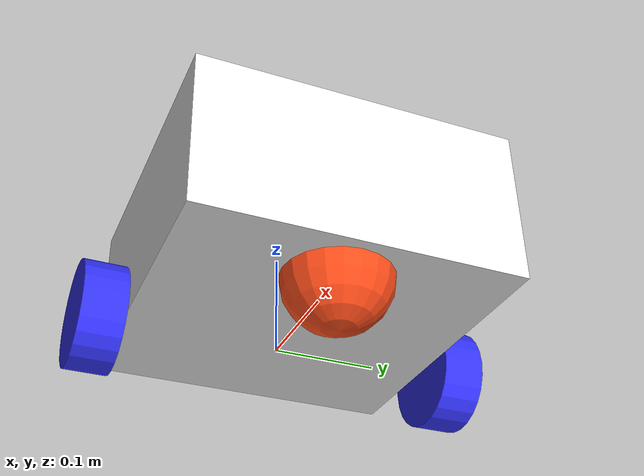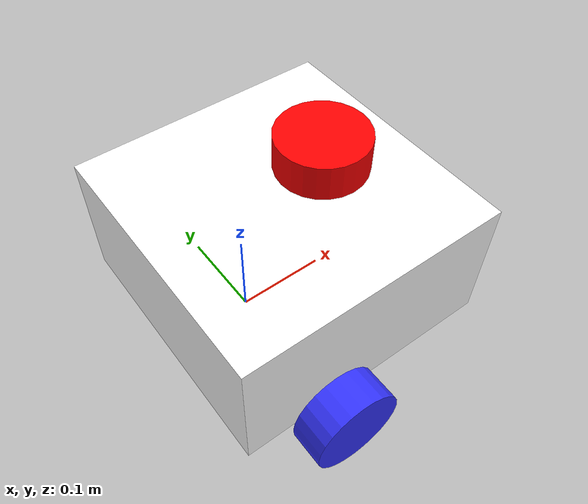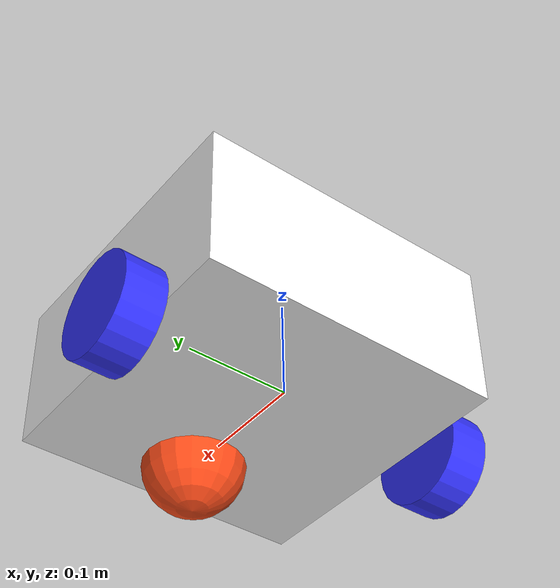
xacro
<?xml version="1.0"?>
<robot xmlns:xacro="http://www.ros.org/wiki/xacro" name="robot" >

    <xacro:include filename="gazebo_control.xacro" />
    <xacro:include filename="inertial_macros.xacro" />
    <xacro:include filename="lidar.xacro" />
    <xacro:include filename="robot_core.xacro" />

</robot>

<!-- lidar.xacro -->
<robot xmlns:xacro="http://www.ros.org/wiki/xacro">

    <joint name="laser_joint" type="fixed">
        <parent link="base_link" />
        <child link="laser_frame" />
        <origin xyz="0.1 0 0.175" rpy="0 0 0" />
    </joint>

    <link name="laser_frame">
        <visual>
            <geometry>
                <cylinder radius="0.05" length="0.04" />
            </geometry>
            <material name="red" />
        </visual>
        <collision>
            <geometry>
                <cylinder radius="0.05" length="0.04" />
            </geometry>
        </collision>
        <xacro:inertial_cylinder mass="0.1" length="0.04" radius="0.05">
            <origin xyz="0 0 0" rpy="0 0 0" />
        </xacro:inertial_cylinder>
    </link>

    <gazebo reference="laser_frame">
        <material>Gazebo/Red</material>

        <sensor type="ray" name="laser_sensor">
            <pose>0 0 0 0 0 0</pose>
            <visualize>true</visualize>
            <update_rate>10</update_rate>
            <ray>
                <scan>
                    <horizontal>
                        <samples>360</samples>
                        <min_angle>-3.14</min_angle>
                        <max_angle>3.14</max_angle>
                    </horizontal>
                </scan>
                <range>
                    <min>0.3</min>
                    <max>12</max>
                </range>
            </ray>
            <plugin name="gazebo_ros_laser" filename="libgazebo_ros_laser.so">
                <topicName>scan</topicName>
                <frameName>laser_frame</frameName>
            </plugin>
        </sensor>
    </gazebo>

</robot>

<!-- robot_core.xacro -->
<robot xmlns:xacro="http://www.ros.org/wiki/xacro" >

    <xacro:include filename="inertial_macros.xacro"/>

    <material name="white">
        <color rgba="1 1 1 1" />
    </material>

    <material name="orange">
        <color rgba="1 0.3 0.1 1"/>
    </material>

    <material name="blue">
        <color rgba="0.2 0.2 1 1"/>
    </material>

    <material name="black">
        <color rgba="0 0 0 1"/>
    </material>

    <material name="red">
        <color rgba="1 0 0 1"/>
    </material>

    <!-- BASE LINK -->

    <link name="base_link">

    </link>

    <!-- CHASSIS LINK -->

    <joint name="chassis_joint" type="fixed">
        <parent link="base_link"/>
        <child link="chassis"/>
        <origin xyz="-0.1 0 0"/>
    </joint>

    <link name="chassis">
        <visual>
            <origin xyz="0.15 0 0.075"/>
            <geometry>
                <box size="0.3 0.3 0.15"/>
            </geometry>
            <material name="white"/>
        </visual>
        <collision>
            <origin xyz="0.15 0 0.075"/>
            <geometry>
                <box size="0.3 0.3 0.15"/>
            </geometry>
        </collision>
        <xacro:inertial_box mass="0.5" x="0.3" y="0.3" z="0.15">
            <origin xyz="0.15 0 0.075" rpy="0 0 0"/>
        </xacro:inertial_box>
    </link>

    <gazebo reference="chassis">
        <material>Gazebo/White</material>
    </gazebo>

    <!-- LEFT WHEEL LINK -->

    <joint name="left_wheel_joint" type="continuous">
        <parent link="base_link"/>
        <child link="left_wheel"/>
        <origin xyz="0 0.175 0" rpy="-${pi/2} 0 0" />
        <axis xyz="0 0 1"/>
    </joint>

    <link name="left_wheel">
        <visual>
            <geometry>
                <cylinder radius="0.05" length="0.04"/>
            </geometry>
            <material name="blue"/>
        </visual>
        <collision>
            <geometry>
                <cylinder radius="0.05" length="0.04"/>
            </geometry>
        </collision>
        <xacro:inertial_cylinder mass="0.1" length="0.04" radius="0.05">
            <origin xyz="0 0 0" rpy="0 0 0"/>
        </xacro:inertial_cylinder>
    </link>

    <gazebo reference="left_wheel">
        <material>Gazebo/Blue</material>
    </gazebo>

    <!-- RIGHT WHEEL LINK -->

    <joint name="right_wheel_joint" type="continuous">
        <parent link="base_link"/>
        <child link="right_wheel"/>
        <origin xyz="0 -0.175 0" rpy="${pi/2} 0 0" />
        <axis xyz="0 0 -1"/>
    </joint>

    <link name="right_wheel">
        <visual>
            <geometry>
                <cylinder radius="0.05" length="0.04"/>
            </geometry>
            <material name="blue"/>
        </visual>
        <collision>
            <geometry>
                <cylinder radius="0.05" length="0.04"/>
            </geometry>
        </collision>
        <xacro:inertial_cylinder mass="0.1" length="0.04" radius="0.05">
            <origin xyz="0 0 0" rpy="0 0 0"/>
        </xacro:inertial_cylinder>
    </link>

    <gazebo reference="right_wheel">
        <material>Gazebo/Blue</material>
    </gazebo>

    <!-- CASTER WHEEL LINK -->

    <joint name="caster_wheel_joint" type="fixed">
        <parent link="chassis"/>
        <child link="caster_wheel"/>
        <origin xyz="0.24 0 0"/>
    </joint>

    <link name="caster_wheel">
        <visual>
            <geometry>
                <sphere radius="0.05"/>
            </geometry>
            <material name="orange"/>
        </visual>
        <collision>
            <geometry>
                <sphere radius="0.05"/>
            </geometry>
        </collision>
        <xacro:inertial_sphere mass="0.1" radius="0.05">
            <origin xyz="0 0 0" rpy="0 0 0"/>
        </xacro:inertial_sphere>
    </link>

    <gazebo reference="caster_wheel">
        <material>Gazebo/Black</material>
        <mu1 value="0.001"/>
        <mu2 value="0.001"/>
    </gazebo>

    <!-- Gazebo total control section -->
    <gazebo>
        <plugin name="differential_drive_controller" filename="libgazebo_ros_diff_drive.so">
            <alwaysOn>true</alwaysOn>
            <updateRate>100</updateRate>

            <!-- Topics -->
            <commandTopic>cmd_vel</commandTopic>
            <odometryTopic>odom</odometryTopic>
            <odometryFrame>odom</odometryFrame>

            <!-- Robot Frame -->
            <robotBaseFrame>base_link</robotBaseFrame>

            <!-- Wheel Configuration -->
            <leftJoint>left_wheel_joint</leftJoint>
            <rightJoint>right_wheel_joint</rightJoint>
            <wheelSeparation>0.35</wheelSeparation>
            <wheelDiameter>0.1</wheelDiameter>

            <!-- Additional Parameters -->
            <publishWheelTF>false</publishWheelTF>
            <publishOdomTF>true</publishOdomTF>
            <publishWheelJointState>true</publishWheelJointState>

            <wheelAcceleration>0</wheelAcceleration>
            <wheelTorque>1</wheelTorque>

            <odometrySource>1</odometrySource>
        </plugin>
    </gazebo>

</robot>
